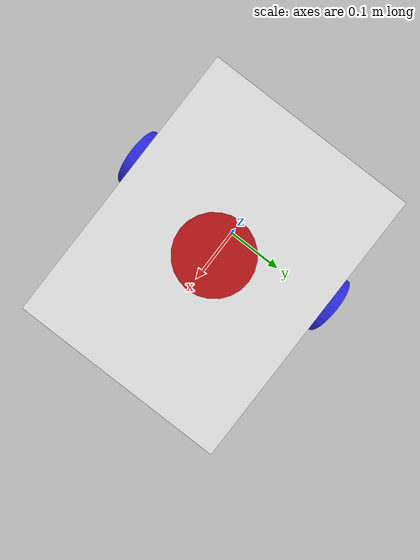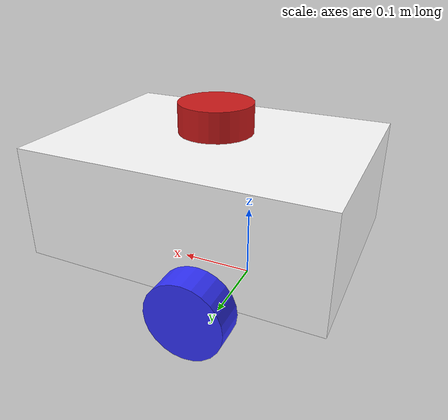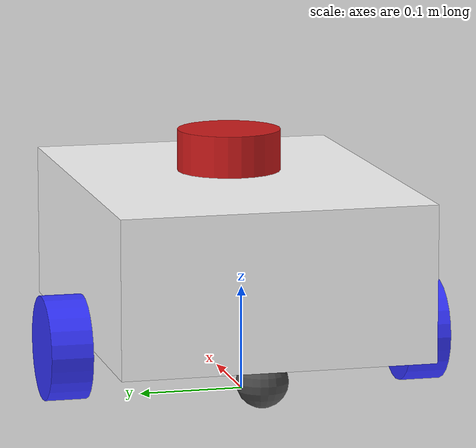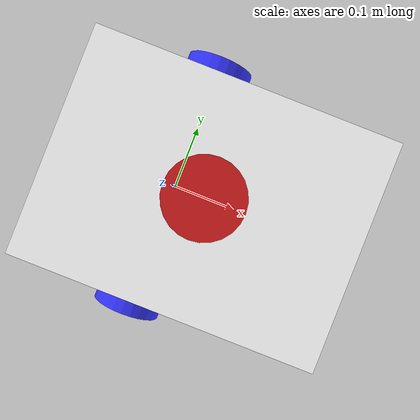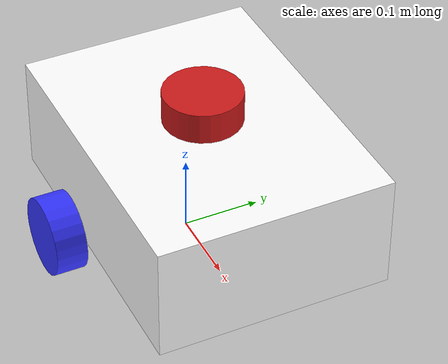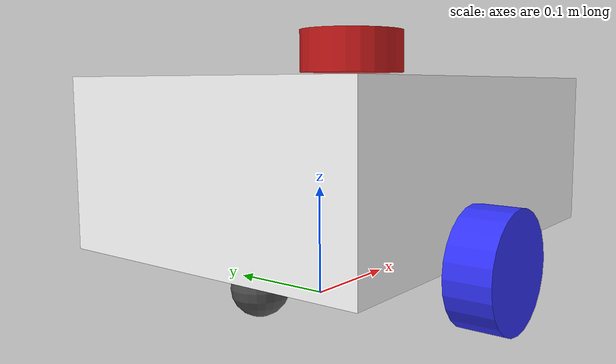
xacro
<?xml version="1.0"?>
<robot xmlns:xacro="http://www.ros.org/wiki/xacro" name="auto_robot">

  <!-- Core robot chassis and wheels -->
  <xacro:include filename="robot_core.xacro" />

  <!-- Sensors -->
  <xacro:include filename="lidar.xacro" />
  <xacro:include filename="camera.xacro" />
  <xacro:include filename="imu.xacro" />

  <!-- Gazebo actuators and differential drive control -->
  <xacro:include filename="gazebo_control.xacro" />

</robot>

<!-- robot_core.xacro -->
<robot xmlns:xacro="http://www.ros.org/wiki/xacro">

  <xacro:include filename="inertial_macros.xacro"/>

  <!-- Material definitions -->
  <material name="white">
    <color rgba="1 1 1 1"/>
  </material>
  <material name="orange">
    <color rgba="1 0.3 0.1 1"/>
  </material>
  <material name="blue">
    <color rgba="0.2 0.2 1 1"/>
  </material>
  <material name="black">
    <color rgba="0.1 0.1 0.1 1"/>
  </material>
  <material name="dark_grey">
    <color rgba="0.3 0.3 0.3 1"/>
  </material>
  <material name="red">
    <color rgba="0.8 0.1 0.1 1"/>
  </material>
  <material name="cyan">
    <color rgba="0.0 0.8 0.8 1"/>
  </material>

  <!-- BASE FOOTPRINT (Ground reference frame) -->
  <link name="base_footprint"/>

  <!-- BASE LINK (Origin of robot coordinate system) -->
  <joint name="base_footprint_joint" type="fixed">
    <parent link="base_footprint"/>
    <child link="base_link"/>
    <origin xyz="0 0 0.05" rpy="0 0 0"/>
  </joint>

  <link name="base_link"/>

  <!-- CHASSIS LINK -->
  <joint name="chassis_joint" type="fixed">
    <parent link="base_link"/>
    <child link="chassis"/>
    <origin xyz="-0.1 0 0"/>
  </joint>

  <link name="chassis">
    <visual>
      <origin xyz="0.15 0 0.075" rpy="0 0 0"/>
      <geometry>
        <box size="0.4 0.3 0.15"/>
      </geometry>
      <material name="white"/>
    </visual>
    <collision>
      <origin xyz="0.15 0 0.075" rpy="0 0 0"/>
      <geometry>
        <box size="0.4 0.3 0.15"/>
      </geometry>
    </collision>
    <xacro:inertial_box mass="2.5" x="0.4" y="0.3" z="0.15">
      <origin xyz="0.15 0 0.075" rpy="0 0 0"/>
    </xacro:inertial_box>
  </link>

  <gazebo reference="chassis">
    <material>Gazebo/White</material>
  </gazebo>

  <!-- LEFT WHEEL -->
  <joint name="left_wheel_joint" type="continuous">
    <parent link="base_link"/>
    <child link="left_wheel"/>
    <origin xyz="0 0.175 0" rpy="-${pi/2} 0 0"/>
    <axis xyz="0 0 1"/>
  </joint>

  <link name="left_wheel">
    <visual>
      <geometry>
        <cylinder radius="0.05" length="0.04"/>
      </geometry>
      <material name="blue"/>
    </visual>
    <collision>
      <geometry>
        <cylinder radius="0.05" length="0.04"/>
      </geometry>
    </collision>
    <xacro:inertial_cylinder mass="0.2" length="0.04" radius="0.05">
      <origin xyz="0 0 0" rpy="0 0 0"/>
    </xacro:inertial_cylinder>
  </link>

  <gazebo reference="left_wheel">
    <material>Gazebo/Blue</material>
    <mu1 value="1.0"/>
    <mu2 value="1.0"/>
    <kp value="10000000.0"/>
    <kd value="1.0"/>
  </gazebo>

  <!-- RIGHT WHEEL -->
  <joint name="right_wheel_joint" type="continuous">
    <parent link="base_link"/>
    <child link="right_wheel"/>
    <origin xyz="0 -0.175 0" rpy="${pi/2} 0 0"/>
    <axis xyz="0 0 -1"/>
  </joint>

  <link name="right_wheel">
    <visual>
      <geometry>
        <cylinder radius="0.05" length="0.04"/>
      </geometry>
      <material name="blue"/>
    </visual>
    <collision>
      <geometry>
        <cylinder radius="0.05" length="0.04"/>
      </geometry>
    </collision>
    <xacro:inertial_cylinder mass="0.2" length="0.04" radius="0.05">
      <origin xyz="0 0 0" rpy="0 0 0"/>
    </xacro:inertial_cylinder>
  </link>

  <gazebo reference="right_wheel">
    <material>Gazebo/Blue</material>
    <mu1 value="1.0"/>
    <mu2 value="1.0"/>
    <kp value="10000000.0"/>
    <kd value="1.0"/>
  </gazebo>

  <!-- FRONT CASTER WHEEL -->
  <joint name="front_caster_wheel_joint" type="fixed">
    <parent link="chassis"/>
    <child link="front_caster_wheel"/>
    <origin xyz="0.28 0 -0.025" rpy="0 0 0"/>
  </joint>

  <link name="front_caster_wheel">
    <visual>
      <geometry>
        <sphere radius="0.025"/>
      </geometry>
      <material name="dark_grey"/>
    </visual>
    <collision>
      <geometry>
        <sphere radius="0.025"/>
      </geometry>
    </collision>
    <xacro:inertial_sphere mass="0.05" radius="0.025">
      <origin xyz="0 0 0" rpy="0 0 0"/>
    </xacro:inertial_sphere>
  </link>

  <gazebo reference="front_caster_wheel">
    <material>Gazebo/DarkGrey</material>
    <mu1 value="0.001"/>
    <mu2 value="0.001"/>
  </gazebo>

  <!-- REAR CASTER WHEEL -->
  <joint name="rear_caster_wheel_joint" type="fixed">
    <parent link="chassis"/>
    <child link="rear_caster_wheel"/>
    <origin xyz="0.02 0 -0.025" rpy="0 0 0"/>
  </joint>

  <link name="rear_caster_wheel">
    <visual>
      <geometry>
        <sphere radius="0.025"/>
      </geometry>
      <material name="dark_grey"/>
    </visual>
    <collision>
      <geometry>
        <sphere radius="0.025"/>
      </geometry>
    </collision>
    <xacro:inertial_sphere mass="0.05" radius="0.025">
      <origin xyz="0 0 0" rpy="0 0 0"/>
    </xacro:inertial_sphere>
  </link>

  <gazebo reference="rear_caster_wheel">
    <material>Gazebo/DarkGrey</material>
    <mu1 value="0.001"/>
    <mu2 value="0.001"/>
  </gazebo>

</robot>

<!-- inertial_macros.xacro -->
<robot xmlns:xacro="http://www.ros.org/wiki/xacro">

  <!-- Inertia calculation macros for standard geometric shapes -->
  <xacro:macro name="inertial_sphere" params="mass radius *origin">
    <inertial>
      <xacro:insert_block name="origin"/>
      <mass value="${mass}" />
      <inertia ixx="${(2/5) * mass * (radius*radius)}" ixy="0.0" ixz="0.0"
               iyy="${(2/5) * mass * (radius*radius)}" iyz="0.0"
               izz="${(2/5) * mass * (radius*radius)}" />
    </inertial>
  </xacro:macro>

  <xacro:macro name="inertial_box" params="mass x y z *origin">
    <inertial>
      <xacro:insert_block name="origin"/>
      <mass value="${mass}" />
      <inertia ixx="${(1/12) * mass * (y*y + z*z)}" ixy="0.0" ixz="0.0"
               iyy="${(1/12) * mass * (x*x + z*z)}" iyz="0.0"
               izz="${(1/12) * mass * (x*x + y*y)}" />
    </inertial>
  </xacro:macro>

  <xacro:macro name="inertial_cylinder" params="mass length radius *origin">
    <inertial>
      <xacro:insert_block name="origin"/>
      <mass value="${mass}" />
      <inertia ixx="${(1/12) * mass * (3*radius*radius + length*length)}" ixy="0.0" ixz="0.0"
               iyy="${(1/12) * mass * (3*radius*radius + length*length)}" iyz="0.0"
               izz="${(1/2) * mass * (radius*radius)}" />
    </inertial>
  </xacro:macro>

</robot>

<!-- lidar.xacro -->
<robot xmlns:xacro="http://www.ros.org/wiki/xacro">

  <joint name="laser_joint" type="fixed">
    <parent link="chassis"/>
    <child link="laser_frame"/>
    <origin xyz="0.15 0 0.175" rpy="0 0 0"/>
  </joint>

  <link name="laser_frame">
    <visual>
      <geometry>
        <cylinder radius="0.05" length="0.04"/>
      </geometry>
      <material name="red"/>
    </visual>
    <collision>
      <geometry>
        <cylinder radius="0.05" length="0.04"/>
      </geometry>
    </collision>
    <xacro:inertial_cylinder mass="0.1" length="0.04" radius="0.05">
      <origin xyz="0 0 0" rpy="0 0 0"/>
    </xacro:inertial_cylinder>
  </link>

  <gazebo reference="laser_frame">
    <material>Gazebo/Red</material>
    <sensor name="laser" type="ray">
      <pose> 0 0 0 0 0 0 </pose>
      <visualize>false</visualize>
      <update_rate>10</update_rate>
      <ray>
        <scan>
          <horizontal>
            <samples>360</samples>
            <resolution>1</resolution>
            <min_angle>-3.14159265</min_angle>
            <max_angle>3.14159265</max_angle>
          </horizontal>
        </scan>
        <range>
          <min>0.12</min>
          <max>12.0</max>
          <resolution>0.01</resolution>
        </range>
        <noise>
          <type>gaussian</type>
          <mean>0.0</mean>
          <stddev>0.008</stddev>
        </noise>
      </ray>
      <plugin name="laser_controller" filename="libgazebo_ros_ray_sensor.so">
        <ros>
          <argument>~/out:=scan</argument>
        </ros>
        <output_type>sensor_msgs/LaserScan</output_type>
        <frame_name>laser_frame</frame_name>
      </plugin>
    </sensor>
  </gazebo>

</robot>

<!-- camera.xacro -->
<robot xmlns:xacro="http://www.ros.org/wiki/xacro">

  <!-- Camera Physical Link -->
  <joint name="camera_joint" type="fixed">
    <parent link="chassis"/>
    <child link="camera_link"/>
    <origin xyz="0.305 0 0.08" rpy="0 0 0"/>
  </joint>

  <link name="camera_link">
    <visual>
      <geometry>
        <box size="0.015 0.04 0.03"/>
      </geometry>
      <material name="red"/>
    </visual>
    <collision>
      <geometry>
        <box size="0.015 0.04 0.03"/>
      </geometry>
    </collision>
    <xacro:inertial_box mass="0.03" x="0.015" y="0.04" z="0.03">
      <origin xyz="0 0 0" rpy="0 0 0"/>
    </xacro:inertial_box>
  </link>

  <!-- Camera Optical Link (Standard ROS convention: z-forward, x-right, y-down) -->
  <joint name="camera_optical_joint" type="fixed">
    <parent link="camera_link"/>
    <child link="camera_link_optical"/>
    <origin xyz="0 0 0" rpy="${-pi/2} 0 ${-pi/2}"/>
  </joint>

  <link name="camera_link_optical"/>

  <gazebo reference="camera_link">
    <material>Gazebo/Red</material>
    <sensor name="camera" type="camera">
      <pose> 0 0 0 0 0 0 </pose>
      <visualize>true</visualize>
      <update_rate>30</update_rate>
      <camera>
        <horizontal_fov>1.089</horizontal_fov>
        <image>
          <format>R8G8B8</format>
          <width>640</width>
          <height>480</height>
        </image>
        <clip>
          <near>0.05</near>
          <far>8.0</far>
        </clip>
        <noise>
          <type>gaussian</type>
          <mean>0.0</mean>
          <stddev>0.007</stddev>
        </noise>
      </camera>
      <plugin name="camera_controller" filename="libgazebo_ros_camera.so">
        <frame_name>camera_link_optical</frame_name>
        <camera_name>camera</camera_name>
        <ros>
          <namespace>/</namespace>
          <argument>~/image_raw:=camera/image_raw</argument>
          <argument>~/camera_info:=camera/camera_info</argument>
        </ros>
      </plugin>
    </sensor>
  </gazebo>

</robot>

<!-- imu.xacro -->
<robot xmlns:xacro="http://www.ros.org/wiki/xacro">

  <joint name="imu_joint" type="fixed">
    <parent link="chassis"/>
    <child link="imu_link"/>
    <origin xyz="0.1 0 0.05" rpy="0 0 0"/>
  </joint>

  <link name="imu_link">
    <visual>
      <geometry>
        <box size="0.02 0.02 0.01"/>
      </geometry>
      <material name="cyan"/>
    </visual>
    <collision>
      <geometry>
        <box size="0.02 0.02 0.01"/>
      </geometry>
    </collision>
    <xacro:inertial_box mass="0.01" x="0.02" y="0.02" z="0.01">
      <origin xyz="0 0 0" rpy="0 0 0"/>
    </xacro:inertial_box>
  </link>

  <gazebo reference="imu_link">
    <material>Gazebo/Cyan</material>
    <sensor name="imu_sensor" type="imu">
      <always_on>true</always_on>
      <update_rate>50</update_rate>
      <visualize>false</visualize>
      <imu>
        <angular_velocity>
          <x>
            <noise type="gaussian">
              <mean>0.0</mean>
              <stddev>2e-4</stddev>
              <bias_mean>0.0000075</bias_mean>
              <bias_stddev>0.0000008</bias_stddev>
            </noise>
          </x>
          <y>
            <noise type="gaussian">
              <mean>0.0</mean>
              <stddev>2e-4</stddev>
              <bias_mean>0.0000075</bias_mean>
              <bias_stddev>0.0000008</bias_stddev>
            </noise>
          </y>
          <z>
            <noise type="gaussian">
              <mean>0.0</mean>
              <stddev>2e-4</stddev>
              <bias_mean>0.0000075</bias_mean>
              <bias_stddev>0.0000008</bias_stddev>
            </noise>
          </z>
        </angular_velocity>
        <linear_acceleration>
          <x>
            <noise type="gaussian">
              <mean>0.0</mean>
              <stddev>1.7e-2</stddev>
              <bias_mean>0.1</bias_mean>
              <bias_stddev>0.001</bias_stddev>
            </noise>
          </x>
          <y>
            <noise type="gaussian">
              <mean>0.0</mean>
              <stddev>1.7e-2</stddev>
              <bias_mean>0.1</bias_mean>
              <bias_stddev>0.001</bias_stddev>
            </noise>
          </y>
          <z>
            <noise type="gaussian">
              <mean>0.0</mean>
              <stddev>1.7e-2</stddev>
              <bias_mean>0.1</bias_mean>
              <bias_stddev>0.001</bias_stddev>
            </noise>
          </z>
        </linear_acceleration>
      </imu>
      <plugin name="imu_plugin" filename="libgazebo_ros_imu_sensor.so">
        <ros>
          <namespace>/</namespace>
          <remapping>~/out:=imu/data</remapping>
        </ros>
        <initial_orientation_as_reference>false</initial_orientation_as_reference>
        <frame_name>imu_link</frame_name>
      </plugin>
    </sensor>
  </gazebo>

</robot>
